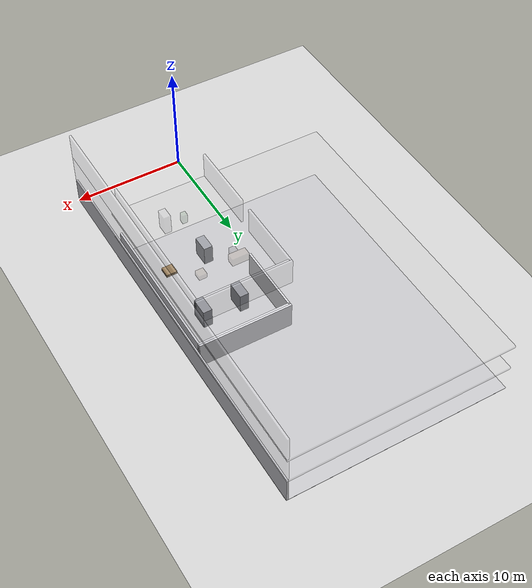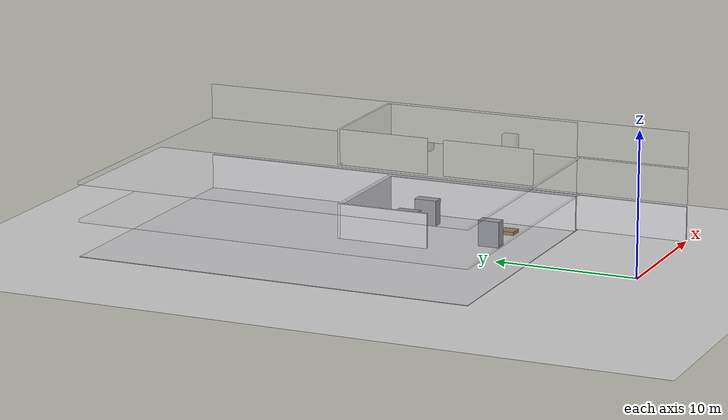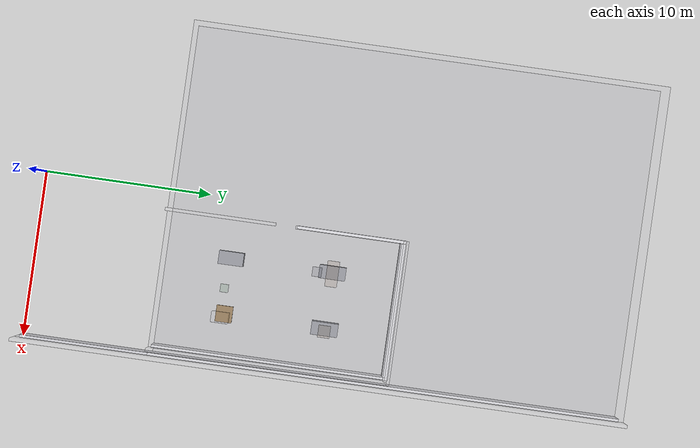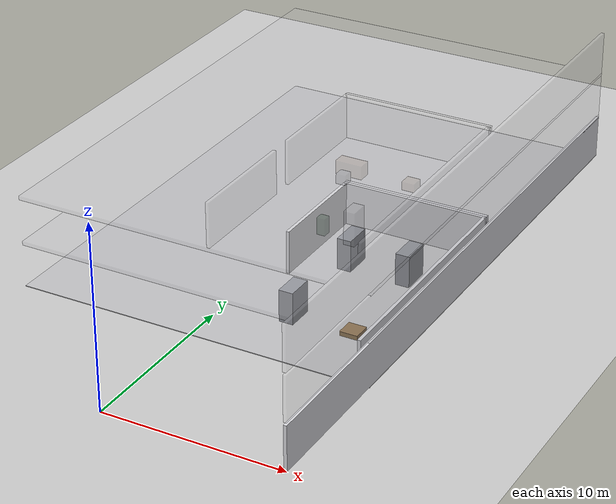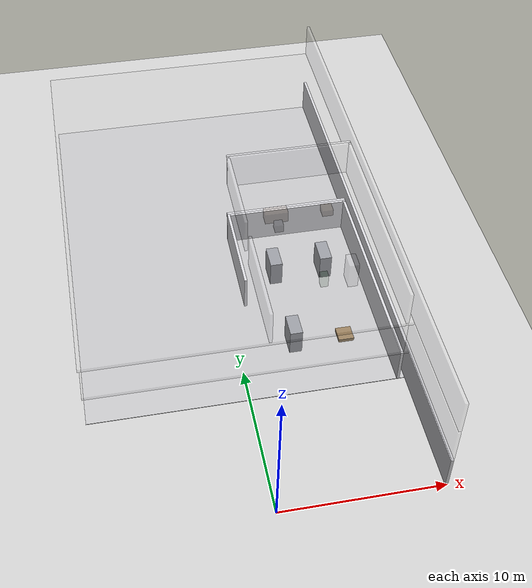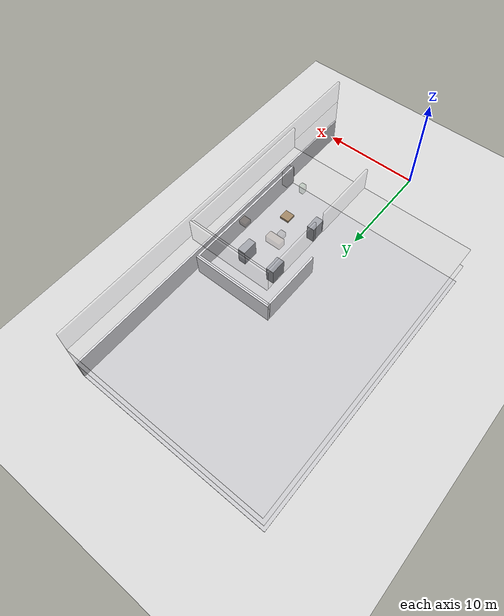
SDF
<sdf version="1.7">
 <world name="generated_world">
  <include><uri>model://sun</uri></include>
  <include><uri>model://ground_plane</uri></include>
  <model name="generated_building">
   <static>true</static>
   <link name="slab_floor_0_0">
    <pose>0.0000 21.9250 -0.1100 0.0000 0.0000 0.0000</pose>
    <collision name="slab_floor_0_0_collision">
     <geometry><box><size>20.0000 28.1500 0.2200</size></box></geometry>
    </collision>
    <visual name="slab_floor_0_0_visual">
     <geometry><box><size>20.0000 28.1500 0.2200</size></box></geometry>
     <material><ambient>0.76 0.76 0.77 1</ambient><diffuse>0.76 0.76 0.77 1</diffuse></material>
    </visual>
    <gravity>false</gravity>
   </link>
   <link name="exterior_east_floor_0">
    <pose>9.9100 18.0000 1.2250 0.0000 0.0000 0.0000</pose>
    <collision name="exterior_east_floor_0_collision">
     <geometry><box><size>0.1800 36.0000 2.4500</size></box></geometry>
    </collision>
    <visual name="exterior_east_floor_0_visual">
     <geometry><box><size>0.1800 36.0000 2.4500</size></box></geometry>
     <material><ambient>0.86 0.86 0.88 1</ambient><diffuse>0.86 0.86 0.88 1</diffuse></material>
    </visual>
    <gravity>false</gravity>
   </link>
   <link name="floor_0_room_1_corridor_wall_upper">
    <pose>1.1900 18.6725 1.2250 0.0000 0.0000 0.0000</pose>
    <collision name="floor_0_room_1_corridor_wall_upper_collision">
     <geometry><box><size>0.1800 6.4150 2.4500</size></box></geometry>
    </collision>
    <visual name="floor_0_room_1_corridor_wall_upper_visual">
     <geometry><box><size>0.1800 6.4150 2.4500</size></box></geometry>
     <material><ambient>0.86 0.86 0.88 1</ambient><diffuse>0.86 0.86 0.88 1</diffuse></material>
    </visual>
    <gravity>false</gravity>
   </link>
   <link name="floor_0_room_1_east_wall">
    <pose>9.4100 14.8650 1.2250 0.0000 0.0000 0.0000</pose>
    <collision name="floor_0_room_1_east_wall_collision">
     <geometry><box><size>0.1800 14.0300 2.4500</size></box></geometry>
    </collision>
    <visual name="floor_0_room_1_east_wall_visual">
     <geometry><box><size>0.1800 14.0300 2.4500</size></box></geometry>
     <material><ambient>0.86 0.86 0.88 1</ambient><diffuse>0.86 0.86 0.88 1</diffuse></material>
    </visual>
    <gravity>false</gravity>
   </link>
   <link name="floor_0_room_1_north_wall">
    <pose>5.3000 21.7900 1.2250 0.0000 0.0000 0.0000</pose>
    <collision name="floor_0_room_1_north_wall_collision">
     <geometry><box><size>8.4000 0.1800 2.4500</size></box></geometry>
    </collision>
    <visual name="floor_0_room_1_north_wall_visual">
     <geometry><box><size>8.4000 0.1800 2.4500</size></box></geometry>
     <material><ambient>0.86 0.86 0.88 1</ambient><diffuse>0.86 0.86 0.88 1</diffuse></material>
    </visual>
    <gravity>false</gravity>
   </link>
   <link name="floor_0_room_3_south_wall">
    <pose>5.3000 21.9700 1.2250 0.0000 0.0000 0.0000</pose>
    <collision name="floor_0_room_3_south_wall_collision">
     <geometry><box><size>8.4000 0.1800 2.4500</size></box></geometry>
    </collision>
    <visual name="floor_0_room_3_south_wall_visual">
     <geometry><box><size>8.4000 0.1800 2.4500</size></box></geometry>
     <material><ambient>0.86 0.86 0.88 1</ambient><diffuse>0.86 0.86 0.88 1</diffuse></material>
    </visual>
    <gravity>false</gravity>
   </link>
   <link name="floor_0_room_1_rack_a">
    <pose>3.6000 17.9225 0.9000 0.0000 0.0000 0.0000</pose>
    <collision name="floor_0_room_1_rack_a_collision">
     <geometry><box><size>0.8000 1.6000 1.8000</size></box></geometry>
    </collision>
    <visual name="floor_0_room_1_rack_a_visual">
     <geometry><box><size>0.8000 1.6000 1.8000</size></box></geometry>
     <material><ambient>0.56 0.57 0.60 1</ambient><diffuse>0.56 0.57 0.60 1</diffuse></material>
    </visual>
    <gravity>false</gravity>
   </link>
   <link name="floor_0_room_1_rack_b">
    <pose>7.0000 17.9225 0.9000 0.0000 0.0000 0.0000</pose>
    <collision name="floor_0_room_1_rack_b_collision">
     <geometry><box><size>0.8000 1.6000 1.8000</size></box></geometry>
    </collision>
    <visual name="floor_0_room_1_rack_b_visual">
     <geometry><box><size>0.8000 1.6000 1.8000</size></box></geometry>
     <material><ambient>0.56 0.57 0.60 1</ambient><diffuse>0.56 0.57 0.60 1</diffuse></material>
    </visual>
    <gravity>false</gravity>
   </link>
   <link name="floor_0_room_1_rack_c">
    <pose>3.6000 11.8075 0.9000 0.0000 0.0000 0.0000</pose>
    <collision name="floor_0_room_1_rack_c_collision">
     <geometry><box><size>0.8000 1.5000 1.8000</size></box></geometry>
    </collision>
    <visual name="floor_0_room_1_rack_c_visual">
     <geometry><box><size>0.8000 1.5000 1.8000</size></box></geometry>
     <material><ambient>0.56 0.57 0.60 1</ambient><diffuse>0.56 0.57 0.60 1</diffuse></material>
    </visual>
    <gravity>false</gravity>
   </link>
   <link name="floor_0_room_1_pallet">
    <pose>7.0000 11.8075 0.1200 0.0000 0.0000 0.0000</pose>
    <collision name="floor_0_room_1_pallet_collision">
     <geometry><box><size>1.0000 1.0000 0.2400</size></box></geometry>
    </collision>
    <visual name="floor_0_room_1_pallet_visual">
     <geometry><box><size>1.0000 1.0000 0.2400</size></box></geometry>
     <material><ambient>0.56 0.44 0.28 1</ambient><diffuse>0.56 0.44 0.28 1</diffuse></material>
    </visual>
    <gravity>false</gravity>
   </link>
   <link name="slab_floor_1_0">
    <pose>0.0000 21.9250 2.4900 0.0000 0.0000 0.0000</pose>
    <collision name="slab_floor_1_0_collision">
     <geometry><box><size>20.0000 28.1500 0.2200</size></box></geometry>
    </collision>
    <visual name="slab_floor_1_0_visual">
     <geometry><box><size>20.0000 28.1500 0.2200</size></box></geometry>
     <material><ambient>0.76 0.76 0.77 1</ambient><diffuse>0.76 0.76 0.77 1</diffuse></material>
     <transparency>0.80</transparency>
    </visual>
    <gravity>false</gravity>
   </link>
   <link name="exterior_east_floor_1">
    <pose>9.9100 18.0000 3.8250 0.0000 0.0000 0.0000</pose>
    <collision name="exterior_east_floor_1_collision">
     <geometry><box><size>0.1800 36.0000 2.4500</size></box></geometry>
    </collision>
    <visual name="exterior_east_floor_1_visual">
     <geometry><box><size>0.1800 36.0000 2.4500</size></box></geometry>
     <material><ambient>0.86 0.86 0.88 1</ambient><diffuse>0.86 0.86 0.88 1</diffuse></material>
     <transparency>0.80</transparency>
    </visual>
    <gravity>false</gravity>
   </link>
   <link name="floor_1_room_1_corridor_wall_upper">
    <pose>1.1900 18.6725 3.8250 0.0000 0.0000 0.0000</pose>
    <collision name="floor_1_room_1_corridor_wall_upper_collision">
     <geometry><box><size>0.1800 6.4150 2.4500</size></box></geometry>
    </collision>
    <visual name="floor_1_room_1_corridor_wall_upper_visual">
     <geometry><box><size>0.1800 6.4150 2.4500</size></box></geometry>
     <material><ambient>0.86 0.86 0.88 1</ambient><diffuse>0.86 0.86 0.88 1</diffuse></material>
     <transparency>0.80</transparency>
    </visual>
    <gravity>false</gravity>
   </link>
   <link name="floor_1_room_1_east_wall">
    <pose>9.4100 14.8650 3.8250 0.0000 0.0000 0.0000</pose>
    <collision name="floor_1_room_1_east_wall_collision">
     <geometry><box><size>0.1800 14.0300 2.4500</size></box></geometry>
    </collision>
    <visual name="floor_1_room_1_east_wall_visual">
     <geometry><box><size>0.1800 14.0300 2.4500</size></box></geometry>
     <material><ambient>0.86 0.86 0.88 1</ambient><diffuse>0.86 0.86 0.88 1</diffuse></material>
     <transparency>0.80</transparency>
    </visual>
    <gravity>false</gravity>
   </link>
   <link name="floor_1_room_1_north_wall">
    <pose>5.3000 21.7900 3.8250 0.0000 0.0000 0.0000</pose>
    <collision name="floor_1_room_1_north_wall_collision">
     <geometry><box><size>8.4000 0.1800 2.4500</size></box></geometry>
    </collision>
    <visual name="floor_1_room_1_north_wall_visual">
     <geometry><box><size>8.4000 0.1800 2.4500</size></box></geometry>
     <material><ambient>0.86 0.86 0.88 1</ambient><diffuse>0.86 0.86 0.88 1</diffuse></material>
     <transparency>0.80</transparency>
    </visual>
    <gravity>false</gravity>
   </link>
   <link name="floor_1_room_3_south_wall">
    <pose>5.3000 21.9700 3.8250 0.0000 0.0000 0.0000</pose>
    <collision name="floor_1_room_3_south_wall_collision">
     <geometry><box><size>8.4000 0.1800 2.4500</size></box></geometry>
    </collision>
    <visual name="floor_1_room_3_south_wall_visual">
     <geometry><box><size>8.4000 0.1800 2.4500</size></box></geometry>
     <material><ambient>0.86 0.86 0.88 1</ambient><diffuse>0.86 0.86 0.88 1</diffuse></material>
     <transparency>0.80</transparency>
    </visual>
    <gravity>false</gravity>
   </link>
   <link name="floor_1_room_1_desk">
    <pose>3.6000 17.9225 3.0500 0.0000 0.0000 0.0000</pose>
    <collision name="floor_1_room_1_desk_collision">
     <geometry><box><size>1.5000 0.7000 0.7500</size></box></geometry>
    </collision>
    <visual name="floor_1_room_1_desk_visual">
     <geometry><box><size>1.5000 0.7000 0.7500</size></box></geometry>
     <material><ambient>0.54 0.43 0.34 1</ambient><diffuse>0.54 0.43 0.34 1</diffuse></material>
     <transparency>0.80</transparency>
    </visual>
    <gravity>false</gravity>
   </link>
   <link name="floor_1_room_1_chair">
    <pose>3.6000 17.0225 2.8800 0.0000 0.0000 0.0000</pose>
    <collision name="floor_1_room_1_chair_collision">
     <geometry><box><size>0.5500 0.5500 0.5500</size></box></geometry>
    </collision>
    <visual name="floor_1_room_1_chair_visual">
     <geometry><box><size>0.5500 0.5500 0.5500</size></box></geometry>
     <material><ambient>0.30 0.30 0.34 1</ambient><diffuse>0.30 0.30 0.34 1</diffuse></material>
     <transparency>0.80</transparency>
    </visual>
    <gravity>false</gravity>
   </link>
   <link name="floor_1_room_1_cabinet">
    <pose>7.0000 11.8075 3.5000 0.0000 0.0000 0.0000</pose>
    <collision name="floor_1_room_1_cabinet_collision">
     <geometry><box><size>0.6000 1.0000 1.8000</size></box></geometry>
    </collision>
    <visual name="floor_1_room_1_cabinet_visual">
     <geometry><box><size>0.6000 1.0000 1.8000</size></box></geometry>
     <material><ambient>0.72 0.72 0.74 1</ambient><diffuse>0.72 0.72 0.74 1</diffuse></material>
     <transparency>0.80</transparency>
    </visual>
    <gravity>false</gravity>
   </link>
   <link name="floor_1_room_1_side_table">
    <pose>7.0000 17.9225 2.9200 0.0000 0.0000 0.0000</pose>
    <collision name="floor_1_room_1_side_table_collision">
     <geometry><box><size>0.7000 0.7000 0.4500</size></box></geometry>
    </collision>
    <visual name="floor_1_room_1_side_table_visual">
     <geometry><box><size>0.7000 0.7000 0.4500</size></box></geometry>
     <material><ambient>0.52 0.42 0.33 1</ambient><diffuse>0.52 0.42 0.33 1</diffuse></material>
     <transparency>0.80</transparency>
    </visual>
    <gravity>false</gravity>
   </link>
   <link name="floor_1_room_1_planter">
    <pose>5.3000 11.8075 3.0500 0.0000 0.0000 0.0000</pose>
    <collision name="floor_1_room_1_planter_collision">
     <geometry><box><size>0.4500 0.4500 0.9000</size></box></geometry>
    </collision>
    <visual name="floor_1_room_1_planter_visual">
     <geometry><box><size>0.4500 0.4500 0.9000</size></box></geometry>
     <material><ambient>0.28 0.46 0.30 1</ambient><diffuse>0.28 0.46 0.30 1</diffuse></material>
     <transparency>0.80</transparency>
    </visual>
    <gravity>false</gravity>
   </link>
   <link name="slab_floor_2_0">
    <pose>0.0000 21.9250 5.0900 0.0000 0.0000 0.0000</pose>
    <collision name="slab_floor_2_0_collision">
     <geometry><box><size>20.0000 28.1500 0.2200</size></box></geometry>
    </collision>
    <visual name="slab_floor_2_0_visual">
     <geometry><box><size>20.0000 28.1500 0.2200</size></box></geometry>
     <material><ambient>0.76 0.76 0.77 1</ambient><diffuse>0.76 0.76 0.77 1</diffuse></material>
     <transparency>0.80</transparency>
    </visual>
    <gravity>false</gravity>
   </link>
   <link name="exterior_east_floor_2">
    <pose>9.9100 18.0000 6.4250 0.0000 0.0000 0.0000</pose>
    <collision name="exterior_east_floor_2_collision">
     <geometry><box><size>0.1800 36.0000 2.4500</size></box></geometry>
    </collision>
    <visual name="exterior_east_floor_2_visual">
     <geometry><box><size>0.1800 36.0000 2.4500</size></box></geometry>
     <material><ambient>0.86 0.86 0.88 1</ambient><diffuse>0.86 0.86 0.88 1</diffuse></material>
     <transparency>0.80</transparency>
    </visual>
    <gravity>false</gravity>
   </link>
   <link name="floor_2_room_1_corridor_wall_lower">
    <pose>1.1900 11.0575 6.4250 0.0000 0.0000 0.0000</pose>
    <collision name="floor_2_room_1_corridor_wall_lower_collision">
     <geometry><box><size>0.1800 6.4150 2.4500</size></box></geometry>
    </collision>
    <visual name="floor_2_room_1_corridor_wall_lower_visual">
     <geometry><box><size>0.1800 6.4150 2.4500</size></box></geometry>
     <material><ambient>0.86 0.86 0.88 1</ambient><diffuse>0.86 0.86 0.88 1</diffuse></material>
     <transparency>0.80</transparency>
    </visual>
    <gravity>false</gravity>
   </link>
   <link name="floor_2_room_1_corridor_wall_upper">
    <pose>1.1900 18.6725 6.4250 0.0000 0.0000 0.0000</pose>
    <collision name="floor_2_room_1_corridor_wall_upper_collision">
     <geometry><box><size>0.1800 6.4150 2.4500</size></box></geometry>
    </collision>
    <visual name="floor_2_room_1_corridor_wall_upper_visual">
     <geometry><box><size>0.1800 6.4150 2.4500</size></box></geometry>
     <material><ambient>0.86 0.86 0.88 1</ambient><diffuse>0.86 0.86 0.88 1</diffuse></material>
     <transparency>0.80</transparency>
    </visual>
    <gravity>false</gravity>
   </link>
   <link name="floor_2_room_1_east_wall">
    <pose>9.4100 14.8650 6.4250 0.0000 0.0000 0.0000</pose>
    <collision name="floor_2_room_1_east_wall_collision">
     <geometry><box><size>0.1800 14.0300 2.4500</size></box></geometry>
    </collision>
    <visual name="floor_2_room_1_east_wall_visual">
     <geometry><box><size>0.1800 14.0300 2.4500</size></box></geometry>
     <material><ambient>0.86 0.86 0.88 1</ambient><diffuse>0.86 0.86 0.88 1</diffuse></material>
     <transparency>0.80</transparency>
    </visual>
    <gravity>false</gravity>
   </link>
   <link name="floor_2_room_1_north_wall">
    <pose>5.3000 21.7900 6.4250 0.0000 0.0000 0.0000</pose>
    <collision name="floor_2_room_1_north_wall_collision">
     <geometry><box><size>8.4000 0.1800 2.4500</size></box></geometry>
    </collision>
    <visual name="floor_2_room_1_north_wall_visual">
     <geometry><box><size>8.4000 0.1800 2.4500</size></box></geometry>
     <material><ambient>0.86 0.86 0.88 1</ambient><diffuse>0.86 0.86 0.88 1</diffuse></material>
     <transparency>0.80</transparency>
    </visual>
    <gravity>false</gravity>
   </link>
   <link name="floor_2_room_3_south_wall">
    <pose>5.3000 21.9700 6.4250 0.0000 0.0000 0.0000</pose>
    <collision name="floor_2_room_3_south_wall_collision">
     <geometry><box><size>8.4000 0.1800 2.4500</size></box></geometry>
    </collision>
    <visual name="floor_2_room_3_south_wall_visual">
     <geometry><box><size>8.4000 0.1800 2.4500</size></box></geometry>
     <material><ambient>0.86 0.86 0.88 1</ambient><diffuse>0.86 0.86 0.88 1</diffuse></material>
     <transparency>0.80</transparency>
    </visual>
    <gravity>false</gravity>
   </link>
   <link name="floor_2_room_1_desk">
    <pose>3.6000 17.9225 5.6500 0.0000 0.0000 0.0000</pose>
    <collision name="floor_2_room_1_desk_collision">
     <geometry><box><size>1.5000 0.7000 0.7500</size></box></geometry>
    </collision>
    <visual name="floor_2_room_1_desk_visual">
     <geometry><box><size>1.5000 0.7000 0.7500</size></box></geometry>
     <material><ambient>0.54 0.43 0.34 1</ambient><diffuse>0.54 0.43 0.34 1</diffuse></material>
     <transparency>0.80</transparency>
    </visual>
    <gravity>false</gravity>
   </link>
   <link name="floor_2_room_1_chair">
    <pose>3.6000 17.0225 5.4800 0.0000 0.0000 0.0000</pose>
    <collision name="floor_2_room_1_chair_collision">
     <geometry><box><size>0.5500 0.5500 0.5500</size></box></geometry>
    </collision>
    <visual name="floor_2_room_1_chair_visual">
     <geometry><box><size>0.5500 0.5500 0.5500</size></box></geometry>
     <material><ambient>0.30 0.30 0.34 1</ambient><diffuse>0.30 0.30 0.34 1</diffuse></material>
     <transparency>0.80</transparency>
    </visual>
    <gravity>false</gravity>
   </link>
   <link name="floor_2_room_1_cabinet">
    <pose>7.0000 11.8075 6.1000 0.0000 0.0000 0.0000</pose>
    <collision name="floor_2_room_1_cabinet_collision">
     <geometry><box><size>0.6000 1.0000 1.8000</size></box></geometry>
    </collision>
    <visual name="floor_2_room_1_cabinet_visual">
     <geometry><box><size>0.6000 1.0000 1.8000</size></box></geometry>
     <material><ambient>0.72 0.72 0.74 1</ambient><diffuse>0.72 0.72 0.74 1</diffuse></material>
     <transparency>0.80</transparency>
    </visual>
    <gravity>false</gravity>
   </link>
   <link name="floor_2_room_1_side_table">
    <pose>7.0000 17.9225 5.5200 0.0000 0.0000 0.0000</pose>
    <collision name="floor_2_room_1_side_table_collision">
     <geometry><box><size>0.7000 0.7000 0.4500</size></box></geometry>
    </collision>
    <visual name="floor_2_room_1_side_table_visual">
     <geometry><box><size>0.7000 0.7000 0.4500</size></box></geometry>
     <material><ambient>0.52 0.42 0.33 1</ambient><diffuse>0.52 0.42 0.33 1</diffuse></material>
     <transparency>0.80</transparency>
    </visual>
    <gravity>false</gravity>
   </link>
   <link name="floor_2_room_1_planter">
    <pose>5.3000 11.8075 5.6500 0.0000 0.0000 0.0000</pose>
    <collision name="floor_2_room_1_planter_collision">
     <geometry><box><size>0.4500 0.4500 0.9000</size></box></geometry>
    </collision>
    <visual name="floor_2_room_1_planter_visual">
     <geometry><box><size>0.4500 0.4500 0.9000</size></box></geometry>
     <material><ambient>0.28 0.46 0.30 1</ambient><diffuse>0.28 0.46 0.30 1</diffuse></material>
     <transparency>0.80</transparency>
    </visual>
    <gravity>false</gravity>
   </link>
  </model>
 </world>
</sdf>
